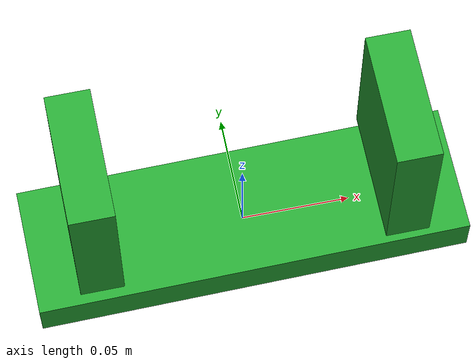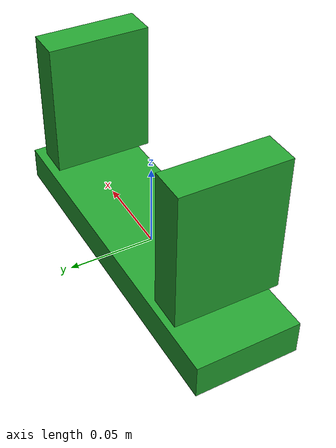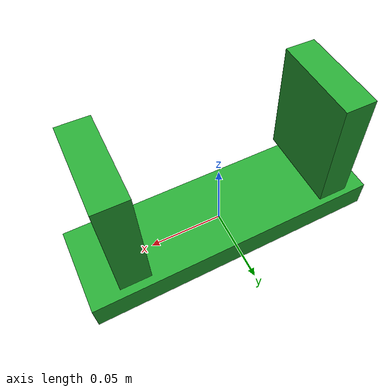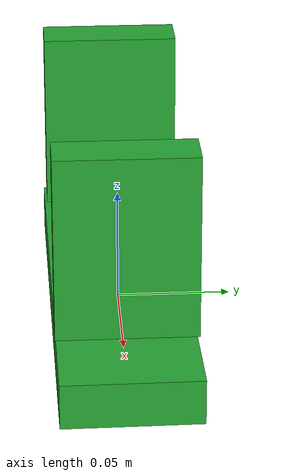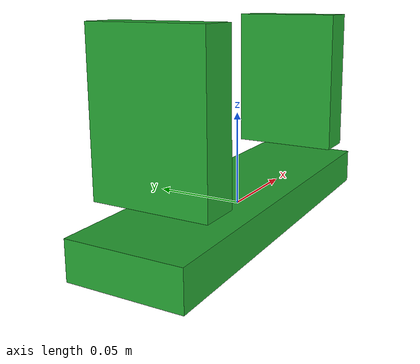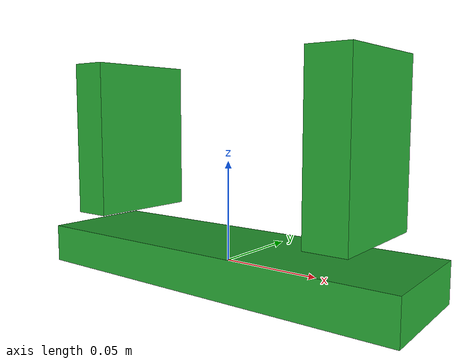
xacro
<?xml version="1.0"?>
<robot  xmlns:xacro="http://www.ros.org/wiki/xacro">
    <link name="gripper_base_link">
        <visual>
            <geometry>
                <box size="0.2 0.06 0.02"/>
            </geometry>
            <origin rpy="0 0 0.01" xyz="0 0 0"/>
            <material name="dark_green"/>
        </visual>
        <collision>
            <geometry>
                <box size="0.2 0.06 0.02"/>
            </geometry>
            <origin rpy="0 0 0.01" xyz="0 0 0"/>
        </collision>
    </link>
    <link name="gripper_left_finger_link">
        <visual>
            <geometry>
                <box size="0.02 0.06 0.08"/>
            </geometry>
            <origin rpy="0 0 0.0" xyz="0 0 0.04"/>
            <material name="light_green"/>
        </visual>
        <collision>
            <geometry>
                <box size="0.02 0.06 0.08"/>
            </geometry>
            <origin rpy="0 0 0.0" xyz="0 0 0.04"/>
        </collision>
    </link>

    <link name="gripper_right_finger_link">
        <visual>
            <geometry>
                <box size="0.02 0.06 0.08"/>
            </geometry>
            <origin rpy="0 0 0.0" xyz="0 0 0.04"/>
            <material name="light_green"/>
        </visual>
        <collision>
            <geometry>
                <box size="0.02 0.06 0.08"/>
            </geometry>
            <origin rpy="0 0 0.0" xyz="0 0 0.04"/>
        </collision>
    </link>

    <joint name="gripper_left_finger_joint" type="prismatic">
        <parent link="gripper_base_link"/>
        <child link="gripper_left_finger_link"/>
        <origin xyz="-0.07 0.0 0.02" rpy="0.0 0.0 0.0"/>
        <axis xyz="1 0 0"/>
        <limit lower="0.0" upper="0.06" effort="1000" velocity="0.0"/>
    </joint>

    <joint name="gripper_right_finger_joint" type="prismatic">
        <parent link="gripper_base_link"/>
        <child link="gripper_right_finger_link"/>
        <origin xyz="0.07 0.0 0.02" rpy="0.0 0.0 0.0"/>
        <axis xyz="1 0 0"/>
        <mimic joint="gripper_left_finger_joint" multiplier="-1"/>
        <limit lower="-0.06" upper="0" effort="1000" velocity="0.0"/>
    </joint>
</robot>
